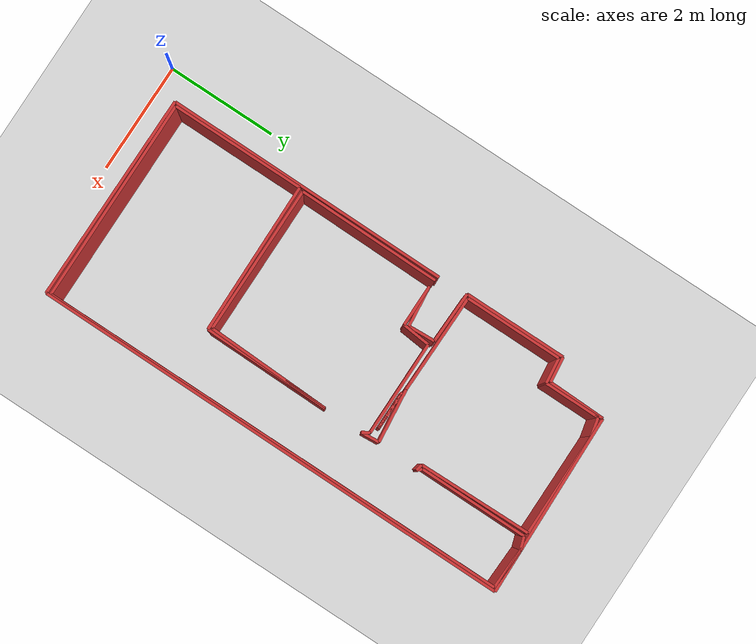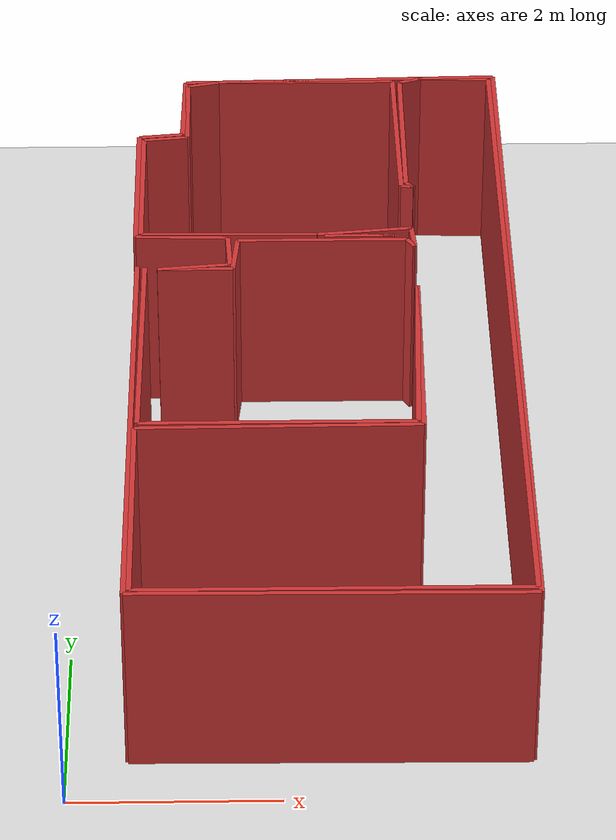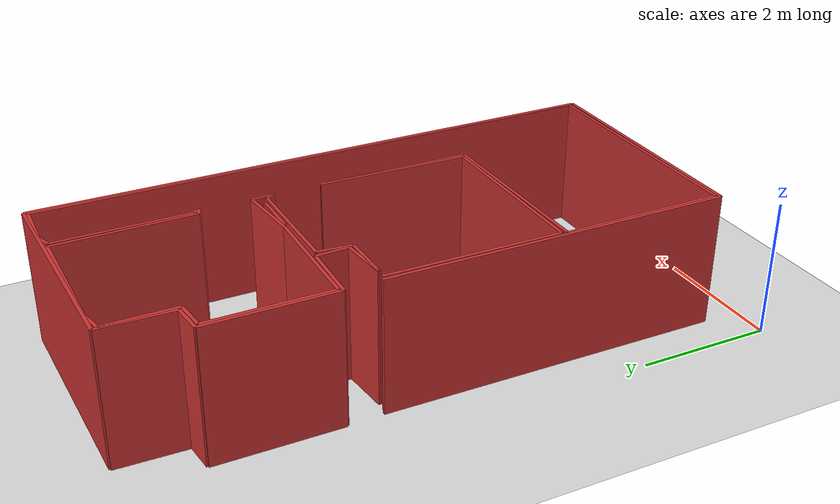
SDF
<?xml version="1.0"?>
<sdf version="1.10">
  <world name="generated_world">
    <gravity>0 0 -9.8</gravity>
    <scene>
      <ambient>0.6 0.6 0.6 1</ambient>
      <background>0.8 0.8 0.8 1</background>
      <shadows>true</shadows>
    </scene>

    <plugin
      filename="gz-sim-physics-system"
      name="gz::sim::systems::Physics">
    </plugin>
    <plugin
      filename="gz-sim-user-commands-system"
      name="gz::sim::systems::UserCommands">
    </plugin>
    <plugin
      filename="gz-sim-scene-broadcaster-system"
      name="gz::sim::systems::SceneBroadcaster">
    </plugin>
    <plugin
      filename="gz-sim-sensors-system"
      name="gz::sim::systems::Sensors">
      <render_engine>ogre2</render_engine>
    </plugin>

    <!-- Sun light -->
    <light name="sun" type="directional">
      <cast_shadows>true</cast_shadows>
      <pose>0 0 10 0 0 0</pose>
      <diffuse>0.8 0.8 0.8 1</diffuse>
      <specular>0.2 0.2 0.2 1</specular>
      <attenuation>
        <range>1000</range>
        <constant>0.9</constant>
        <linear>0.01</linear>
        <quadratic>0.001</quadratic>
      </attenuation>
      <direction>-0.5 0.1 -0.9</direction>
    </light>

    <!-- Ground plane -->
    <model name="ground_plane">
      <static>true</static>
      <link name="link">
        <collision name="collision">
          <geometry><plane><normal>0 0 1</normal><size>500 500</size></plane></geometry>
        </collision>
        <visual name="visual">
          <geometry><plane><normal>0 0 1</normal><size>500 500</size></plane></geometry>
          <material><diffuse>0.85 0.85 0.85 1</diffuse></material>
        </visual>
      </link>
    </model>

    <!-- Walls -->
    <model name="map_walls">
      <static>true</static>
      <link name="walls_link">

        <!-- segment 0 -->
        <collision name="c_0">
          <pose>2.437500 0.537500 1.000000 0 0 3.134881</pose>
          <geometry><box><size>3.725084 0.050000 2.000000</size></box></geometry>
          <surface><friction><ode><mu>1</mu><mu2>1</mu2></ode></friction></surface>
        </collision>
        <visual name="v_0">
          <pose>2.437500 0.537500 1.000000 0 0 3.134881</pose>
          <geometry><box><size>3.725084 0.050000 2.000000</size></box></geometry>
<material>
  <ambient>0.4 0.1 0.1 1</ambient>
  <diffuse>0.8 0.2 0.2 1</diffuse>
  <specular>0.2 0.2 0.2 1</specular>
  <emissive>0 0 0 1</emissive>
</material>
          <cast_shadows>false</cast_shadows>
        </visual>

        <!-- segment 1 -->
        <collision name="c_1">
          <pose>0.587500 3.112500 1.000000 0 0 1.565918</pose>
          <geometry><box><size>5.125061 0.050000 2.000000</size></box></geometry>
          <surface><friction><ode><mu>1</mu><mu2>1</mu2></ode></friction></surface>
        </collision>
        <visual name="v_1">
          <pose>0.587500 3.112500 1.000000 0 0 1.565918</pose>
          <geometry><box><size>5.125061 0.050000 2.000000</size></box></geometry>
<material>
  <ambient>0.4 0.1 0.1 1</ambient>
  <diffuse>0.8 0.2 0.2 1</diffuse>
  <specular>0.2 0.2 0.2 1</specular>
  <emissive>0 0 0 1</emissive>
</material>
          <cast_shadows>false</cast_shadows>
        </visual>

        <!-- segment 2 -->
        <collision name="c_2">
          <pose>0.662500 4.362500 1.000000 0 0 -1.580505</pose>
          <geometry><box><size>2.575121 0.050000 2.000000</size></box></geometry>
          <surface><friction><ode><mu>1</mu><mu2>1</mu2></ode></friction></surface>
        </collision>
        <visual name="v_2">
          <pose>0.662500 4.362500 1.000000 0 0 -1.580505</pose>
          <geometry><box><size>2.575121 0.050000 2.000000</size></box></geometry>
<material>
  <ambient>0.4 0.1 0.1 1</ambient>
  <diffuse>0.8 0.2 0.2 1</diffuse>
  <specular>0.2 0.2 0.2 1</specular>
  <emissive>0 0 0 1</emissive>
</material>
          <cast_shadows>false</cast_shadows>
        </visual>

        <!-- segment 3 -->
        <collision name="c_3">
          <pose>1.975000 3.075000 1.000000 0 0 0.000000</pose>
          <geometry><box><size>2.650000 0.050000 2.000000</size></box></geometry>
          <surface><friction><ode><mu>1</mu><mu2>1</mu2></ode></friction></surface>
        </collision>
        <visual name="v_3">
          <pose>1.975000 3.075000 1.000000 0 0 0.000000</pose>
          <geometry><box><size>2.650000 0.050000 2.000000</size></box></geometry>
<material>
  <ambient>0.4 0.1 0.1 1</ambient>
  <diffuse>0.8 0.2 0.2 1</diffuse>
  <specular>0.2 0.2 0.2 1</specular>
  <emissive>0 0 0 1</emissive>
</material>
          <cast_shadows>false</cast_shadows>
        </visual>

        <!-- segment 4 -->
        <collision name="c_4">
          <pose>3.337500 4.187500 1.000000 0 0 1.537101</pose>
          <geometry><box><size>2.226264 0.050000 2.000000</size></box></geometry>
          <surface><friction><ode><mu>1</mu><mu2>1</mu2></ode></friction></surface>
        </collision>
        <visual name="v_4">
          <pose>3.337500 4.187500 1.000000 0 0 1.537101</pose>
          <geometry><box><size>2.226264 0.050000 2.000000</size></box></geometry>
<material>
  <ambient>0.4 0.1 0.1 1</ambient>
  <diffuse>0.8 0.2 0.2 1</diffuse>
  <specular>0.2 0.2 0.2 1</specular>
  <emissive>0 0 0 1</emissive>
</material>
          <cast_shadows>false</cast_shadows>
        </visual>

        <!-- segment 5 -->
        <collision name="c_5">
          <pose>3.362500 4.162500 1.000000 0 0 -1.581785</pose>
          <geometry><box><size>2.275137 0.050000 2.000000</size></box></geometry>
          <surface><friction><ode><mu>1</mu><mu2>1</mu2></ode></friction></surface>
        </collision>
        <visual name="v_5">
          <pose>3.362500 4.162500 1.000000 0 0 -1.581785</pose>
          <geometry><box><size>2.275137 0.050000 2.000000</size></box></geometry>
<material>
  <ambient>0.4 0.1 0.1 1</ambient>
  <diffuse>0.8 0.2 0.2 1</diffuse>
  <specular>0.2 0.2 0.2 1</specular>
  <emissive>0 0 0 1</emissive>
</material>
          <cast_shadows>false</cast_shadows>
        </visual>

        <!-- segment 6 -->
        <collision name="c_6">
          <pose>1.987500 3.012500 1.000000 0 0 -3.132419</pose>
          <geometry><box><size>2.725115 0.050000 2.000000</size></box></geometry>
          <surface><friction><ode><mu>1</mu><mu2>1</mu2></ode></friction></surface>
        </collision>
        <visual name="v_6">
          <pose>1.987500 3.012500 1.000000 0 0 -3.132419</pose>
          <geometry><box><size>2.725115 0.050000 2.000000</size></box></geometry>
<material>
  <ambient>0.4 0.1 0.1 1</ambient>
  <diffuse>0.8 0.2 0.2 1</diffuse>
  <specular>0.2 0.2 0.2 1</specular>
  <emissive>0 0 0 1</emissive>
</material>
          <cast_shadows>false</cast_shadows>
        </visual>

        <!-- segment 7 -->
        <collision name="c_7">
          <pose>0.625000 1.800000 1.000000 0 0 -1.570796</pose>
          <geometry><box><size>2.400000 0.050000 2.000000</size></box></geometry>
          <surface><friction><ode><mu>1</mu><mu2>1</mu2></ode></friction></surface>
        </collision>
        <visual name="v_7">
          <pose>0.625000 1.800000 1.000000 0 0 -1.570796</pose>
          <geometry><box><size>2.400000 0.050000 2.000000</size></box></geometry>
<material>
  <ambient>0.4 0.1 0.1 1</ambient>
  <diffuse>0.8 0.2 0.2 1</diffuse>
  <specular>0.2 0.2 0.2 1</specular>
  <emissive>0 0 0 1</emissive>
</material>
          <cast_shadows>false</cast_shadows>
        </visual>

        <!-- segment 8 -->
        <collision name="c_8">
          <pose>2.450000 0.600000 1.000000 0 0 0.000000</pose>
          <geometry><box><size>3.650000 0.050000 2.000000</size></box></geometry>
          <surface><friction><ode><mu>1</mu><mu2>1</mu2></ode></friction></surface>
        </collision>
        <visual name="v_8">
          <pose>2.450000 0.600000 1.000000 0 0 0.000000</pose>
          <geometry><box><size>3.650000 0.050000 2.000000</size></box></geometry>
<material>
  <ambient>0.4 0.1 0.1 1</ambient>
  <diffuse>0.8 0.2 0.2 1</diffuse>
  <specular>0.2 0.2 0.2 1</specular>
  <emissive>0 0 0 1</emissive>
</material>
          <cast_shadows>false</cast_shadows>
        </visual>

        <!-- segment 9 -->
        <collision name="c_9">
          <pose>4.275000 4.875000 1.000000 0 0 1.570796</pose>
          <geometry><box><size>8.550000 0.050000 2.000000</size></box></geometry>
          <surface><friction><ode><mu>1</mu><mu2>1</mu2></ode></friction></surface>
        </collision>
        <visual name="v_9">
          <pose>4.275000 4.875000 1.000000 0 0 1.570796</pose>
          <geometry><box><size>8.550000 0.050000 2.000000</size></box></geometry>
<material>
  <ambient>0.4 0.1 0.1 1</ambient>
  <diffuse>0.8 0.2 0.2 1</diffuse>
  <specular>0.2 0.2 0.2 1</specular>
  <emissive>0 0 0 1</emissive>
</material>
          <cast_shadows>false</cast_shadows>
        </visual>

        <!-- segment 10 -->
        <collision name="c_10">
          <pose>3.912500 9.162500 1.000000 0 0 3.107124</pose>
          <geometry><box><size>0.725431 0.050000 2.000000</size></box></geometry>
          <surface><friction><ode><mu>1</mu><mu2>1</mu2></ode></friction></surface>
        </collision>
        <visual name="v_10">
          <pose>3.912500 9.162500 1.000000 0 0 3.107124</pose>
          <geometry><box><size>0.725431 0.050000 2.000000</size></box></geometry>
<material>
  <ambient>0.4 0.1 0.1 1</ambient>
  <diffuse>0.8 0.2 0.2 1</diffuse>
  <specular>0.2 0.2 0.2 1</specular>
  <emissive>0 0 0 1</emissive>
</material>
          <cast_shadows>false</cast_shadows>
        </visual>

        <!-- segment 11 -->
        <collision name="c_11">
          <pose>3.437500 9.137500 1.000000 0 0 -2.819842</pose>
          <geometry><box><size>0.237171 0.050000 2.000000</size></box></geometry>
          <surface><friction><ode><mu>1</mu><mu2>1</mu2></ode></friction></surface>
        </collision>
        <visual name="v_11">
          <pose>3.437500 9.137500 1.000000 0 0 -2.819842</pose>
          <geometry><box><size>0.237171 0.050000 2.000000</size></box></geometry>
<material>
  <ambient>0.4 0.1 0.1 1</ambient>
  <diffuse>0.8 0.2 0.2 1</diffuse>
  <specular>0.2 0.2 0.2 1</specular>
  <emissive>0 0 0 1</emissive>
</material>
          <cast_shadows>false</cast_shadows>
        </visual>

        <!-- segment 12 -->
        <collision name="c_12">
          <pose>3.325000 8.125000 1.000000 0 0 -1.570796</pose>
          <geometry><box><size>1.950000 0.050000 2.000000</size></box></geometry>
          <surface><friction><ode><mu>1</mu><mu2>1</mu2></ode></friction></surface>
        </collision>
        <visual name="v_12">
          <pose>3.325000 8.125000 1.000000 0 0 -1.570796</pose>
          <geometry><box><size>1.950000 0.050000 2.000000</size></box></geometry>
<material>
  <ambient>0.4 0.1 0.1 1</ambient>
  <diffuse>0.8 0.2 0.2 1</diffuse>
  <specular>0.2 0.2 0.2 1</specular>
  <emissive>0 0 0 1</emissive>
</material>
          <cast_shadows>false</cast_shadows>
        </visual>

        <!-- segment 13 -->
        <collision name="c_13">
          <pose>3.362500 7.112500 1.000000 0 0 -0.785398</pose>
          <geometry><box><size>0.106066 0.050000 2.000000</size></box></geometry>
          <surface><friction><ode><mu>1</mu><mu2>1</mu2></ode></friction></surface>
        </collision>
        <visual name="v_13">
          <pose>3.362500 7.112500 1.000000 0 0 -0.785398</pose>
          <geometry><box><size>0.106066 0.050000 2.000000</size></box></geometry>
<material>
  <ambient>0.4 0.1 0.1 1</ambient>
  <diffuse>0.8 0.2 0.2 1</diffuse>
  <specular>0.2 0.2 0.2 1</specular>
  <emissive>0 0 0 1</emissive>
</material>
          <cast_shadows>false</cast_shadows>
        </visual>

        <!-- segment 14 -->
        <collision name="c_14">
          <pose>3.337500 7.087500 1.000000 0 0 2.944197</pose>
          <geometry><box><size>0.127475 0.050000 2.000000</size></box></geometry>
          <surface><friction><ode><mu>1</mu><mu2>1</mu2></ode></friction></surface>
        </collision>
        <visual name="v_14">
          <pose>3.337500 7.087500 1.000000 0 0 2.944197</pose>
          <geometry><box><size>0.127475 0.050000 2.000000</size></box></geometry>
<material>
  <ambient>0.4 0.1 0.1 1</ambient>
  <diffuse>0.8 0.2 0.2 1</diffuse>
  <specular>0.2 0.2 0.2 1</specular>
  <emissive>0 0 0 1</emissive>
</material>
          <cast_shadows>false</cast_shadows>
        </visual>

        <!-- segment 15 -->
        <collision name="c_15">
          <pose>3.262500 8.112500 1.000000 0 0 1.583141</pose>
          <geometry><box><size>2.025154 0.050000 2.000000</size></box></geometry>
          <surface><friction><ode><mu>1</mu><mu2>1</mu2></ode></friction></surface>
        </collision>
        <visual name="v_15">
          <pose>3.262500 8.112500 1.000000 0 0 1.583141</pose>
          <geometry><box><size>2.025154 0.050000 2.000000</size></box></geometry>
<material>
  <ambient>0.4 0.1 0.1 1</ambient>
  <diffuse>0.8 0.2 0.2 1</diffuse>
  <specular>0.2 0.2 0.2 1</specular>
  <emissive>0 0 0 1</emissive>
</material>
          <cast_shadows>false</cast_shadows>
        </visual>

        <!-- segment 16 -->
        <collision name="c_16">
          <pose>2.325000 9.125000 1.000000 0 0 3.141593</pose>
          <geometry><box><size>1.850000 0.050000 2.000000</size></box></geometry>
          <surface><friction><ode><mu>1</mu><mu2>1</mu2></ode></friction></surface>
        </collision>
        <visual name="v_16">
          <pose>2.325000 9.125000 1.000000 0 0 3.141593</pose>
          <geometry><box><size>1.850000 0.050000 2.000000</size></box></geometry>
<material>
  <ambient>0.4 0.1 0.1 1</ambient>
  <diffuse>0.8 0.2 0.2 1</diffuse>
  <specular>0.2 0.2 0.2 1</specular>
  <emissive>0 0 0 1</emissive>
</material>
          <cast_shadows>false</cast_shadows>
        </visual>

        <!-- segment 17 -->
        <collision name="c_17">
          <pose>1.237500 9.087500 1.000000 0 0 -2.914794</pose>
          <geometry><box><size>0.333542 0.050000 2.000000</size></box></geometry>
          <surface><friction><ode><mu>1</mu><mu2>1</mu2></ode></friction></surface>
        </collision>
        <visual name="v_17">
          <pose>1.237500 9.087500 1.000000 0 0 -2.914794</pose>
          <geometry><box><size>0.333542 0.050000 2.000000</size></box></geometry>
<material>
  <ambient>0.4 0.1 0.1 1</ambient>
  <diffuse>0.8 0.2 0.2 1</diffuse>
  <specular>0.2 0.2 0.2 1</specular>
  <emissive>0 0 0 1</emissive>
</material>
          <cast_shadows>false</cast_shadows>
        </visual>

        <!-- segment 18 -->
        <collision name="c_18">
          <pose>1.075000 8.550000 1.000000 0 0 -1.570796</pose>
          <geometry><box><size>1.000000 0.050000 2.000000</size></box></geometry>
          <surface><friction><ode><mu>1</mu><mu2>1</mu2></ode></friction></surface>
        </collision>
        <visual name="v_18">
          <pose>1.075000 8.550000 1.000000 0 0 -1.570796</pose>
          <geometry><box><size>1.000000 0.050000 2.000000</size></box></geometry>
<material>
  <ambient>0.4 0.1 0.1 1</ambient>
  <diffuse>0.8 0.2 0.2 1</diffuse>
  <specular>0.2 0.2 0.2 1</specular>
  <emissive>0 0 0 1</emissive>
</material>
          <cast_shadows>false</cast_shadows>
        </visual>

        <!-- segment 19 -->
        <collision name="c_19">
          <pose>0.850000 8.025000 1.000000 0 0 -3.030935</pose>
          <geometry><box><size>0.452769 0.050000 2.000000</size></box></geometry>
          <surface><friction><ode><mu>1</mu><mu2>1</mu2></ode></friction></surface>
        </collision>
        <visual name="v_19">
          <pose>0.850000 8.025000 1.000000 0 0 -3.030935</pose>
          <geometry><box><size>0.452769 0.050000 2.000000</size></box></geometry>
<material>
  <ambient>0.4 0.1 0.1 1</ambient>
  <diffuse>0.8 0.2 0.2 1</diffuse>
  <specular>0.2 0.2 0.2 1</specular>
  <emissive>0 0 0 1</emissive>
</material>
          <cast_shadows>false</cast_shadows>
        </visual>

        <!-- segment 20 -->
        <collision name="c_20">
          <pose>0.625000 7.125000 1.000000 0 0 -1.570796</pose>
          <geometry><box><size>1.750000 0.050000 2.000000</size></box></geometry>
          <surface><friction><ode><mu>1</mu><mu2>1</mu2></ode></friction></surface>
        </collision>
        <visual name="v_20">
          <pose>0.625000 7.125000 1.000000 0 0 -1.570796</pose>
          <geometry><box><size>1.750000 0.050000 2.000000</size></box></geometry>
<material>
  <ambient>0.4 0.1 0.1 1</ambient>
  <diffuse>0.8 0.2 0.2 1</diffuse>
  <specular>0.2 0.2 0.2 1</specular>
  <emissive>0 0 0 1</emissive>
</material>
          <cast_shadows>false</cast_shadows>
        </visual>

        <!-- segment 21 -->
        <collision name="c_21">
          <pose>1.512500 6.237500 1.000000 0 0 -0.014084</pose>
          <geometry><box><size>1.775176 0.050000 2.000000</size></box></geometry>
          <surface><friction><ode><mu>1</mu><mu2>1</mu2></ode></friction></surface>
        </collision>
        <visual name="v_21">
          <pose>1.512500 6.237500 1.000000 0 0 -0.014084</pose>
          <geometry><box><size>1.775176 0.050000 2.000000</size></box></geometry>
<material>
  <ambient>0.4 0.1 0.1 1</ambient>
  <diffuse>0.8 0.2 0.2 1</diffuse>
  <specular>0.2 0.2 0.2 1</specular>
  <emissive>0 0 0 1</emissive>
</material>
          <cast_shadows>false</cast_shadows>
        </visual>

        <!-- segment 22 -->
        <collision name="c_22">
          <pose>2.875000 6.275000 1.000000 0 0 0.104877</pose>
          <geometry><box><size>0.955249 0.050000 2.000000</size></box></geometry>
          <surface><friction><ode><mu>1</mu><mu2>1</mu2></ode></friction></surface>
        </collision>
        <visual name="v_22">
          <pose>2.875000 6.275000 1.000000 0 0 0.104877</pose>
          <geometry><box><size>0.955249 0.050000 2.000000</size></box></geometry>
<material>
  <ambient>0.4 0.1 0.1 1</ambient>
  <diffuse>0.8 0.2 0.2 1</diffuse>
  <specular>0.2 0.2 0.2 1</specular>
  <emissive>0 0 0 1</emissive>
</material>
          <cast_shadows>false</cast_shadows>
        </visual>

        <!-- segment 23 -->
        <collision name="c_23">
          <pose>3.362500 6.162500 1.000000 0 0 -1.494024</pose>
          <geometry><box><size>0.325960 0.050000 2.000000</size></box></geometry>
          <surface><friction><ode><mu>1</mu><mu2>1</mu2></ode></friction></surface>
        </collision>
        <visual name="v_23">
          <pose>3.362500 6.162500 1.000000 0 0 -1.494024</pose>
          <geometry><box><size>0.325960 0.050000 2.000000</size></box></geometry>
<material>
  <ambient>0.4 0.1 0.1 1</ambient>
  <diffuse>0.8 0.2 0.2 1</diffuse>
  <specular>0.2 0.2 0.2 1</specular>
  <emissive>0 0 0 1</emissive>
</material>
          <cast_shadows>false</cast_shadows>
        </visual>

        <!-- segment 24 -->
        <collision name="c_24">
          <pose>3.337500 6.062500 1.000000 0 0 2.111216</pose>
          <geometry><box><size>0.145774 0.050000 2.000000</size></box></geometry>
          <surface><friction><ode><mu>1</mu><mu2>1</mu2></ode></friction></surface>
        </collision>
        <visual name="v_24">
          <pose>3.337500 6.062500 1.000000 0 0 2.111216</pose>
          <geometry><box><size>0.145774 0.050000 2.000000</size></box></geometry>
<material>
  <ambient>0.4 0.1 0.1 1</ambient>
  <diffuse>0.8 0.2 0.2 1</diffuse>
  <specular>0.2 0.2 0.2 1</specular>
  <emissive>0 0 0 1</emissive>
</material>
          <cast_shadows>false</cast_shadows>
        </visual>

        <!-- segment 25 -->
        <collision name="c_25">
          <pose>2.450000 6.125000 1.000000 0 0 3.141593</pose>
          <geometry><box><size>1.700000 0.050000 2.000000</size></box></geometry>
          <surface><friction><ode><mu>1</mu><mu2>1</mu2></ode></friction></surface>
        </collision>
        <visual name="v_25">
          <pose>2.450000 6.125000 1.000000 0 0 3.141593</pose>
          <geometry><box><size>1.700000 0.050000 2.000000</size></box></geometry>
<material>
  <ambient>0.4 0.1 0.1 1</ambient>
  <diffuse>0.8 0.2 0.2 1</diffuse>
  <specular>0.2 0.2 0.2 1</specular>
  <emissive>0 0 0 1</emissive>
</material>
          <cast_shadows>false</cast_shadows>
        </visual>

        <!-- segment 26 -->
        <collision name="c_26">
          <pose>1.575000 5.875000 1.000000 0 0 -1.670465</pose>
          <geometry><box><size>0.502494 0.050000 2.000000</size></box></geometry>
          <surface><friction><ode><mu>1</mu><mu2>1</mu2></ode></friction></surface>
        </collision>
        <visual name="v_26">
          <pose>1.575000 5.875000 1.000000 0 0 -1.670465</pose>
          <geometry><box><size>0.502494 0.050000 2.000000</size></box></geometry>
<material>
  <ambient>0.4 0.1 0.1 1</ambient>
  <diffuse>0.8 0.2 0.2 1</diffuse>
  <specular>0.2 0.2 0.2 1</specular>
  <emissive>0 0 0 1</emissive>
</material>
          <cast_shadows>false</cast_shadows>
        </visual>

        <!-- segment 27 -->
        <collision name="c_27">
          <pose>1.175000 5.625000 1.000000 0 0 3.141593</pose>
          <geometry><box><size>0.750000 0.050000 2.000000</size></box></geometry>
          <surface><friction><ode><mu>1</mu><mu2>1</mu2></ode></friction></surface>
        </collision>
        <visual name="v_27">
          <pose>1.175000 5.625000 1.000000 0 0 3.141593</pose>
          <geometry><box><size>0.750000 0.050000 2.000000</size></box></geometry>
<material>
  <ambient>0.4 0.1 0.1 1</ambient>
  <diffuse>0.8 0.2 0.2 1</diffuse>
  <specular>0.2 0.2 0.2 1</specular>
  <emissive>0 0 0 1</emissive>
</material>
          <cast_shadows>false</cast_shadows>
        </visual>

        <!-- segment 28 -->
        <collision name="c_28">
          <pose>1.162500 5.662500 1.000000 0 0 0.103082</pose>
          <geometry><box><size>0.728869 0.050000 2.000000</size></box></geometry>
          <surface><friction><ode><mu>1</mu><mu2>1</mu2></ode></friction></surface>
        </collision>
        <visual name="v_28">
          <pose>1.162500 5.662500 1.000000 0 0 0.103082</pose>
          <geometry><box><size>0.728869 0.050000 2.000000</size></box></geometry>
<material>
  <ambient>0.4 0.1 0.1 1</ambient>
  <diffuse>0.8 0.2 0.2 1</diffuse>
  <specular>0.2 0.2 0.2 1</specular>
  <emissive>0 0 0 1</emissive>
</material>
          <cast_shadows>false</cast_shadows>
        </visual>

        <!-- segment 29 -->
        <collision name="c_29">
          <pose>1.512500 5.937500 1.000000 0 0 1.623379</pose>
          <geometry><box><size>0.475657 0.050000 2.000000</size></box></geometry>
          <surface><friction><ode><mu>1</mu><mu2>1</mu2></ode></friction></surface>
        </collision>
        <visual name="v_29">
          <pose>1.512500 5.937500 1.000000 0 0 1.623379</pose>
          <geometry><box><size>0.475657 0.050000 2.000000</size></box></geometry>
<material>
  <ambient>0.4 0.1 0.1 1</ambient>
  <diffuse>0.8 0.2 0.2 1</diffuse>
  <specular>0.2 0.2 0.2 1</specular>
  <emissive>0 0 0 1</emissive>
</material>
          <cast_shadows>false</cast_shadows>
        </visual>

        <!-- segment 30 -->
        <collision name="c_30">
          <pose>1.037500 6.187500 1.000000 0 0 3.114572</pose>
          <geometry><box><size>0.925338 0.050000 2.000000</size></box></geometry>
          <surface><friction><ode><mu>1</mu><mu2>1</mu2></ode></friction></surface>
        </collision>
        <visual name="v_30">
          <pose>1.037500 6.187500 1.000000 0 0 3.114572</pose>
          <geometry><box><size>0.925338 0.050000 2.000000</size></box></geometry>
<material>
  <ambient>0.4 0.1 0.1 1</ambient>
  <diffuse>0.8 0.2 0.2 1</diffuse>
  <specular>0.2 0.2 0.2 1</specular>
  <emissive>0 0 0 1</emissive>
</material>
          <cast_shadows>false</cast_shadows>
        </visual>

        <!-- segment 31 -->
        <collision name="c_31">
          <pose>0.575000 7.125000 1.000000 0 0 1.570796</pose>
          <geometry><box><size>1.850000 0.050000 2.000000</size></box></geometry>
          <surface><friction><ode><mu>1</mu><mu2>1</mu2></ode></friction></surface>
        </collision>
        <visual name="v_31">
          <pose>0.575000 7.125000 1.000000 0 0 1.570796</pose>
          <geometry><box><size>1.850000 0.050000 2.000000</size></box></geometry>
<material>
  <ambient>0.4 0.1 0.1 1</ambient>
  <diffuse>0.8 0.2 0.2 1</diffuse>
  <specular>0.2 0.2 0.2 1</specular>
  <emissive>0 0 0 1</emissive>
</material>
          <cast_shadows>false</cast_shadows>
        </visual>

        <!-- segment 32 -->
        <collision name="c_32">
          <pose>0.800000 8.075000 1.000000 0 0 0.110657</pose>
          <geometry><box><size>0.452769 0.050000 2.000000</size></box></geometry>
          <surface><friction><ode><mu>1</mu><mu2>1</mu2></ode></friction></surface>
        </collision>
        <visual name="v_32">
          <pose>0.800000 8.075000 1.000000 0 0 0.110657</pose>
          <geometry><box><size>0.452769 0.050000 2.000000</size></box></geometry>
<material>
  <ambient>0.4 0.1 0.1 1</ambient>
  <diffuse>0.8 0.2 0.2 1</diffuse>
  <specular>0.2 0.2 0.2 1</specular>
  <emissive>0 0 0 1</emissive>
</material>
          <cast_shadows>false</cast_shadows>
        </visual>

        <!-- segment 33 -->
        <collision name="c_33">
          <pose>1.037500 8.612500 1.000000 0 0 1.546411</pose>
          <geometry><box><size>1.025305 0.050000 2.000000</size></box></geometry>
          <surface><friction><ode><mu>1</mu><mu2>1</mu2></ode></friction></surface>
        </collision>
        <visual name="v_33">
          <pose>1.037500 8.612500 1.000000 0 0 1.546411</pose>
          <geometry><box><size>1.025305 0.050000 2.000000</size></box></geometry>
<material>
  <ambient>0.4 0.1 0.1 1</ambient>
  <diffuse>0.8 0.2 0.2 1</diffuse>
  <specular>0.2 0.2 0.2 1</specular>
  <emissive>0 0 0 1</emissive>
</material>
          <cast_shadows>false</cast_shadows>
        </visual>

        <!-- segment 34 -->
        <collision name="c_34">
          <pose>2.687500 9.162500 1.000000 0 0 0.022897</pose>
          <geometry><box><size>3.275859 0.050000 2.000000</size></box></geometry>
          <surface><friction><ode><mu>1</mu><mu2>1</mu2></ode></friction></surface>
        </collision>
        <visual name="v_34">
          <pose>2.687500 9.162500 1.000000 0 0 0.022897</pose>
          <geometry><box><size>3.275859 0.050000 2.000000</size></box></geometry>
<material>
  <ambient>0.4 0.1 0.1 1</ambient>
  <diffuse>0.8 0.2 0.2 1</diffuse>
  <specular>0.2 0.2 0.2 1</specular>
  <emissive>0 0 0 1</emissive>
</material>
          <cast_shadows>false</cast_shadows>
        </visual>

        <!-- segment 35 -->
        <collision name="c_35">
          <pose>4.312500 4.862500 1.000000 0 0 -1.573678</pose>
          <geometry><box><size>8.675036 0.050000 2.000000</size></box></geometry>
          <surface><friction><ode><mu>1</mu><mu2>1</mu2></ode></friction></surface>
        </collision>
        <visual name="v_35">
          <pose>4.312500 4.862500 1.000000 0 0 -1.573678</pose>
          <geometry><box><size>8.675036 0.050000 2.000000</size></box></geometry>
<material>
  <ambient>0.4 0.1 0.1 1</ambient>
  <diffuse>0.8 0.2 0.2 1</diffuse>
  <specular>0.2 0.2 0.2 1</specular>
  <emissive>0 0 0 1</emissive>
</material>
          <cast_shadows>false</cast_shadows>
        </visual>

        <!-- segment 36 -->
        <collision name="c_36">
          <pose>2.825000 6.200000 1.000000 0 0 3.141593</pose>
          <geometry><box><size>0.700000 0.050000 2.000000</size></box></geometry>
          <surface><friction><ode><mu>1</mu><mu2>1</mu2></ode></friction></surface>
        </collision>
        <visual name="v_36">
          <pose>2.825000 6.200000 1.000000 0 0 3.141593</pose>
          <geometry><box><size>0.700000 0.050000 2.000000</size></box></geometry>
<material>
  <ambient>0.4 0.1 0.1 1</ambient>
  <diffuse>0.8 0.2 0.2 1</diffuse>
  <specular>0.2 0.2 0.2 1</specular>
  <emissive>0 0 0 1</emissive>
</material>
          <cast_shadows>false</cast_shadows>
        </visual>

        <!-- segment 37 -->
        <collision name="c_37">
          <pose>2.825000 6.200000 1.000000 0 0 0.000000</pose>
          <geometry><box><size>0.700000 0.050000 2.000000</size></box></geometry>
          <surface><friction><ode><mu>1</mu><mu2>1</mu2></ode></friction></surface>
        </collision>
        <visual name="v_37">
          <pose>2.825000 6.200000 1.000000 0 0 0.000000</pose>
          <geometry><box><size>0.700000 0.050000 2.000000</size></box></geometry>
<material>
  <ambient>0.4 0.1 0.1 1</ambient>
  <diffuse>0.8 0.2 0.2 1</diffuse>
  <specular>0.2 0.2 0.2 1</specular>
  <emissive>0 0 0 1</emissive>
</material>
          <cast_shadows>false</cast_shadows>
        </visual>

      </link>
    </model>
  </world>
</sdf>
